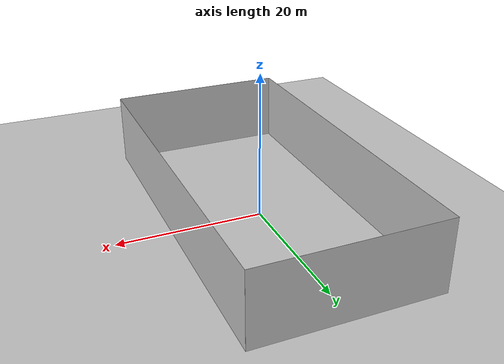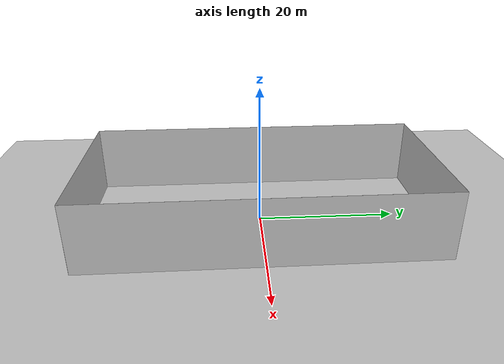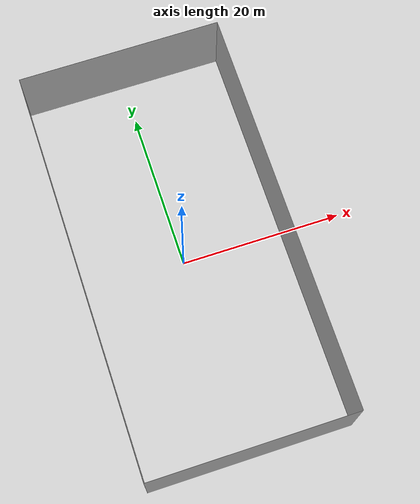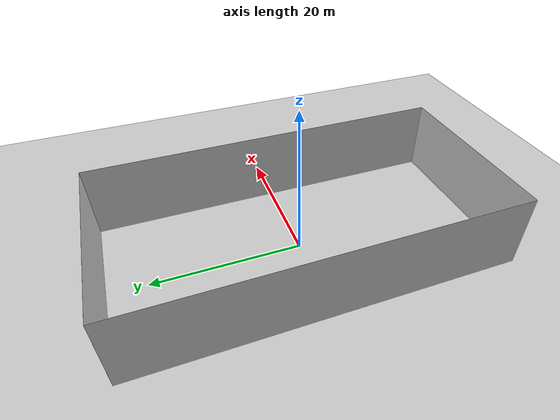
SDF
<?xml version="1.0" ?>
<sdf version="1.6">
  <world name="env2">
	<!-- Setting the physics and scene -->
    <physics name="default_physics" default="true" type="ode">
      <max_step_size>0.002</max_step_size>
      <real_time_factor>1</real_time_factor>
      <real_time_update_rate>500</real_time_update_rate>
    </physics>
    <scene>
      <ambient>0.8 0.8 0.8 1.0</ambient>
      <sky>
        <clouds>
          <speed>12</speed>
        </clouds>
      </sky>
      <shadows>1</shadows>
    </scene>

	<include>
		<uri>model://env2_terrain</uri>
	</include>

  </world>
</sdf>

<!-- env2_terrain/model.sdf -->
<sdf version="1.6">
    <model name='env2_terrain'>
      <static>1</static>
      <link name='env2_terrain_base'>
        <visual name='floor_vis'>
          <cast_shadows>0</cast_shadows>
          <geometry>
            <plane>
              <normal>0 0 1</normal>
              <size>100 100</size>
            </plane>
          </geometry>
          <material>
            <script>
              <uri>file://models/env2_terrain/materials/scripts/env2_terrain.material</uri>
              <name>env2_terrain/floor</name>
            </script>
          </material>
        </visual>
        <collision name='floor_col'>
          <geometry>
            <plane>
              <normal>0 0 1</normal>
              <size>100 100</size>
            </plane>
          </geometry>
          <surface>
            <contact>
              <collide_bitmask>65535</collide_bitmask>
              <ode/>
            </contact>
            <friction>
              <ode>
                <mu>100</mu>
                <mu2>50</mu2>
              </ode>
              <torsional>
                <ode/>
              </torsional>
            </friction>
            <bounce/>
          </surface>
          <max_contacts>10</max_contacts>
        </collision>
       <self_collide>0</self_collide>
        <enable_wind>0</enable_wind>
        <kinematic>0</kinematic>
      </link>

    <link name='north_link'>
      <visual name='north'>
        <pose>12.5 0 5 0 -1.57079 0</pose>
            <geometry>
              <box>
                <size>10 50 0.01</size>
              </box>
            </geometry>
            <material>
              <script>
                <uri>file://models/env2_terrain/materials/scripts/env2_terrain.material</uri>
                <name>env2_terrain/wall</name>
              </script>
              <emissive>0.6 0.6 0.6 1</emissive>
            </material>
      </visual>
      <collision name='north'>
          <pose>12.5 0 5 0 -1.57079 0</pose>
            <geometry>
              <box>
                <size>10 50 0.01</size>
              </box>
            </geometry>
            <max_contacts>40</max_contacts>
            <surface>
              <contact>
                <ode/>
              </contact>
              <bounce/>
              <friction>
                <torsional>
                  <ode/>
                </torsional>
                <ode/>
              </friction>
            </surface>
      </collision>
      <self_collide>0</self_collide>
      <enable_wind>0</enable_wind>
      <kinematic>0</kinematic>
    </link>
    <joint type="fixed" name="north_link_joint">
      <child>north_link</child>
      <parent>env2_terrain_base</parent>
    </joint>

    <link name='south_link'>
      <visual name='south'>
        <pose>-12.5 0 5 0 -1.57079 0</pose>
            <geometry>
              <box>
                <size>10 50 0.01</size>
              </box>
            </geometry>
            <material>
              <script>
                <uri>file://models/env2_terrain/materials/scripts/env2_terrain.material</uri>
                <name>env2_terrain/wall</name>
              </script>
              <emissive>0.6 0.6 0.6 1</emissive>
            </material>
          </visual>
            <collision name='south'>
          <pose>-12.5 0 5 0 -1.57079 0</pose>
            <geometry>
              <box>
                <size>10 50 0.01</size>
              </box>
            </geometry>
            <max_contacts>40</max_contacts>
            <surface>
              <contact>
                <ode/>
              </contact>
              <bounce/>
              <friction>
                <torsional>
                  <ode/>
                </torsional>
                <ode/>
              </friction>
            </surface>
          </collision>
            <self_collide>0</self_collide>
            <enable_wind>0</enable_wind>
            <kinematic>0</kinematic>
    </link>
    <joint type="fixed" name="south_link_joint">
      <child>south_link</child>
      <parent>env2_terrain_base</parent>
    </joint>

    <link name='east_link'>
      <visual name='east'>
        <pose>0 25 5 -1.5708 0 0</pose>
              <geometry>
                <box>
                  <size>25 10 0.01</size>
                </box>
              </geometry>
              <material>
                <script>
                  <uri>file://models/env2_terrain/materials/scripts/env2_terrain.material</uri>
                  <name>env2_terrain/wall</name>
                </script>
                <emissive>0.6 0.6 0.6 1</emissive>
              </material>
      </visual>
      <collision name='east'>
        <pose>0 25 5 -1.5708 0 0</pose>
            <geometry>
              <box>
                <size>25 10 0.01</size>
              </box>
            </geometry>
            <max_contacts>40</max_contacts>
            <surface>
              <contact>
                <ode/>
              </contact>
              <bounce/>
              <friction>
                <torsional>
                  <ode/>
                </torsional>
                <ode/>
              </friction>
            </surface>
      </collision>
      <self_collide>0</self_collide>
      <enable_wind>0</enable_wind>
      <kinematic>0</kinematic>
    </link>
    <joint type="fixed" name="east_link_joint">
        <child>east_link</child>
        <parent>env2_terrain_base</parent>
    </joint>

    <link name='west_link'>
      <visual name='west'>
        <pose>0 -25 5 -1.5708 0 0</pose>
              <geometry>
                <box>
                  <size>25 10 0.01</size>
                </box>
              </geometry>
              <material>
                <script>
                  <uri>file://models/env2_terrain/materials/scripts/env2_terrain.material</uri>
                  <name>env2_terrain/wall</name>
                </script>
                <emissive>0.6 0.6 0.6 1</emissive>
              </material>
      </visual>
      <collision name='west'>
        <pose>0 -25 5 -1.5708 0 0</pose>
            <geometry>
              <box>
                <size>25 10 0.01</size>
              </box>
            </geometry>
            <max_contacts>40</max_contacts>
            <surface>
              <contact>
                <ode/>
              </contact>
              <bounce/>
              <friction>
                <torsional>
                  <ode/>
                </torsional>
                <ode/>
              </friction>
            </surface>
        </collision>
            <self_collide>0</self_collide>
            <enable_wind>0</enable_wind>
            <kinematic>0</kinematic>
    </link>
    <joint type="fixed" name="west_link_joint">
        <child>west_link</child>
        <parent>env2_terrain_base</parent>
    </joint>
      <pose frame=''>0 0 0 0 -0 0</pose>
    </model>
</sdf>
